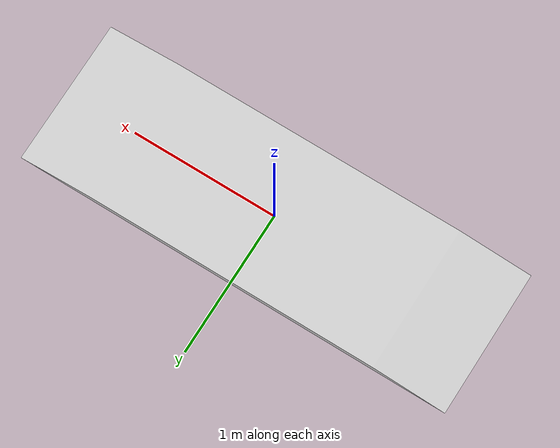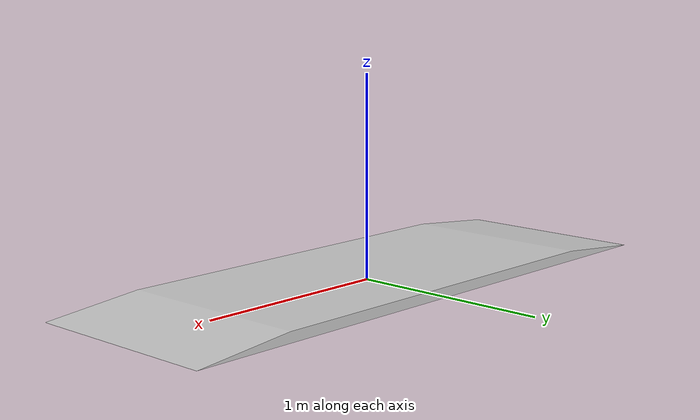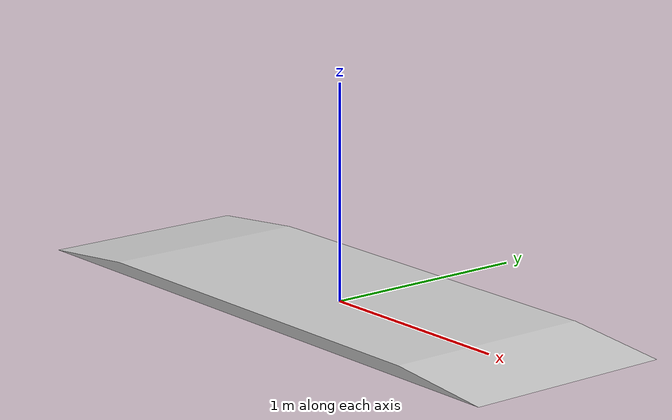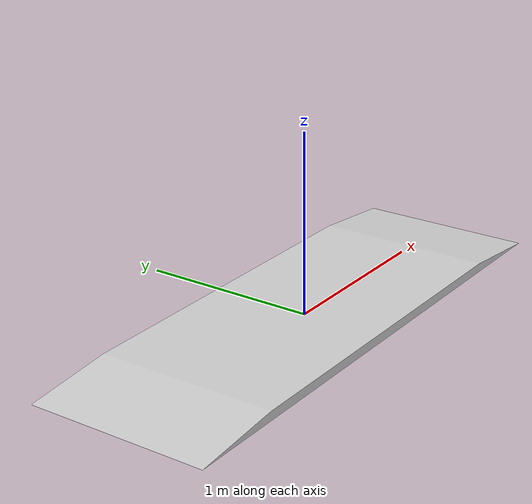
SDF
<?xml version="1.0" ?>
<sdf version="1.5">
  <model name="ramp1_10">
    <link name="link">
      <inertial>
        <mass>1</mass>
      </inertial>
      <collision name="collision">
        <geometry>
          <mesh>
            <uri>model://ramp1_10/meshes/ramp1_10.dae</uri>
          </mesh>
        </geometry>
      </collision>
      <visual name="visual">
        <geometry>
          <mesh>
            <uri>model://ramp1_10/meshes/ramp1_10.dae</uri>
          </mesh>
        </geometry>
      </visual>
    </link>
  </model>
</sdf>
